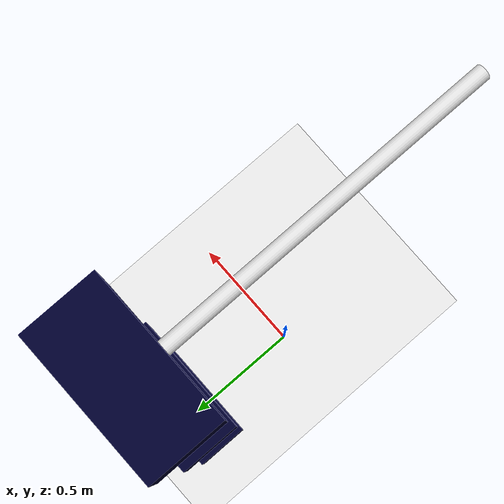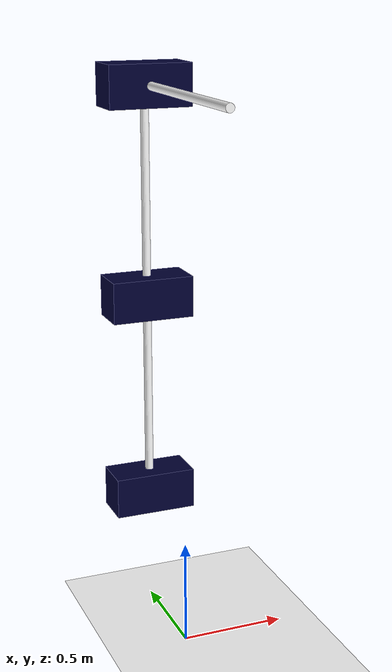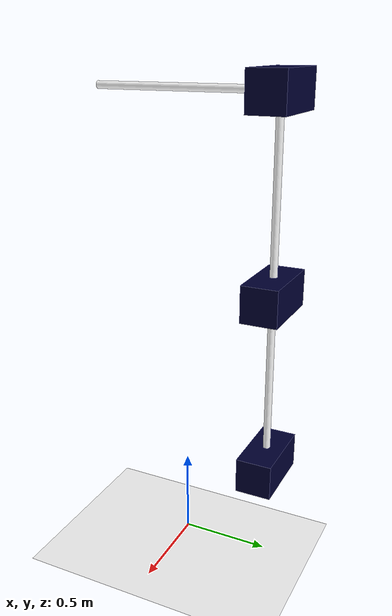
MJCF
<!-- https://mujoco.readthedocs.io/en/latest/overview.html?highlight=hello.xml#examples -->
<mujoco>
  <option gravity = "0 0 -9.81" viscosity="1">
    <flag contact="enable" />
  </option >
   <worldbody>
      <light diffuse="0 0 0" pos="0 0 2" dir="0 0 -1"/>
      <geom type="plane" size="20.25 20.25 0.01" rgba="1 1 1 1"/>
      <body name="chassis1" pos="0 0 2.6" euler="90 0 90">
         <joint name="joint0" type="hinge" axis = "0 0 1" pos = "0 0 0.5"/>
         <geom type="cylinder" size="0.02 0.5" mass = "0" rgba="1 1 1 1"/>
         <geom type="box" size="0.1 0.2 0.1" pos = "0 0 -0.5" rgba="0 0 0.2 1" mass = "0.3"/>
       <body name="chassis2" pos="-0.5 0 -0.5" euler="0 90 0">
         <joint name="joint1" type="hinge" axis = "0 1 0" pos = "0 0 0.5"/>
         <geom type="cylinder" size="0.02 0.5" mass = "0" rgba="1 1 1 1"/>
         <geom type="box" size="0.1 0.2 0.1" pos = "0 0 -0.5" rgba="0 0 0.2 1" mass = "0.3"/>
             <body name="chassis3" pos="0 0 -1" euler="0 0 0">
         <joint name="joint2" type="hinge" axis = "0 1 0" pos = "0 0 0.5"/>
         <geom type="cylinder" size="0.02 0.5" mass = "0" rgba="1 1 1 1"/>
         <geom type="box" size="0.1 0.2 0.1" pos = "0 0 -0.5" rgba="0 0 0.2 1" mass = "0.3"/>
      </body>
       </body>
       </body>
   </worldbody>

   <actuator>
     <motor name="torque" joint="joint0"  gear="1" ctrllimited="true" ctrlrange="-100 100"/>
       <motor name="torque2" joint="joint1"  gear="1" ctrllimited="true" ctrlrange="-100 100"/>
       <motor name="torque3" joint="joint2"  gear="1" ctrllimited="true" ctrlrange="-100 100"/>

   </actuator>

</mujoco>
